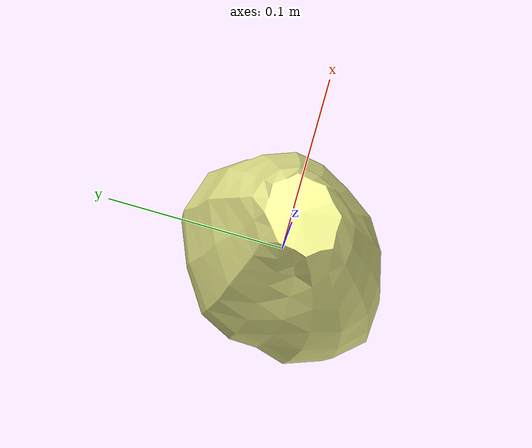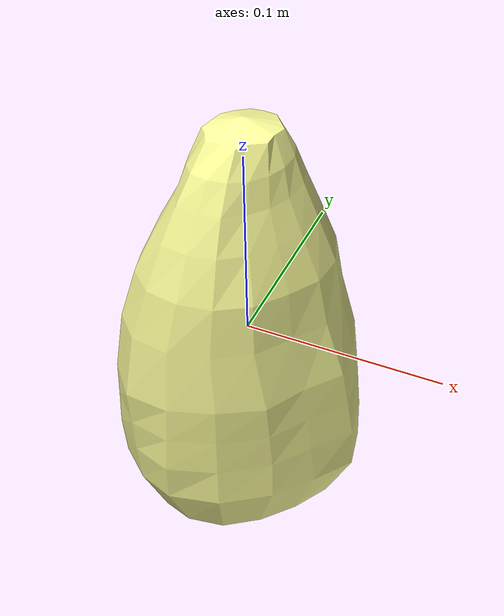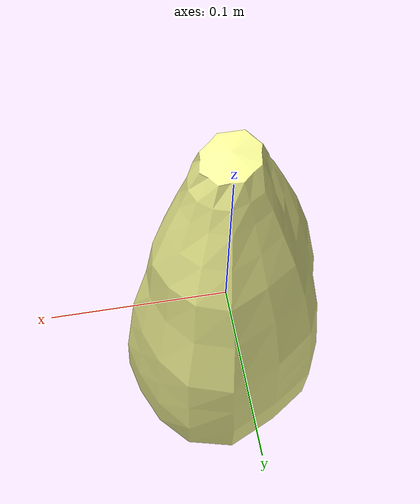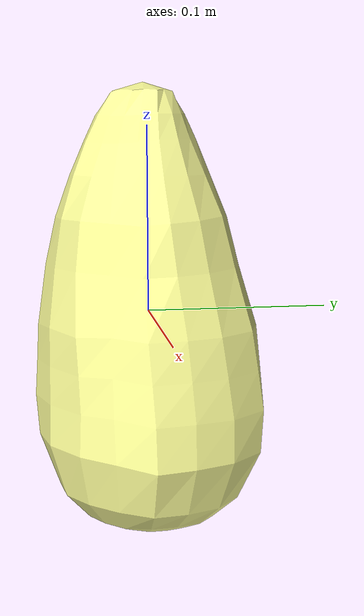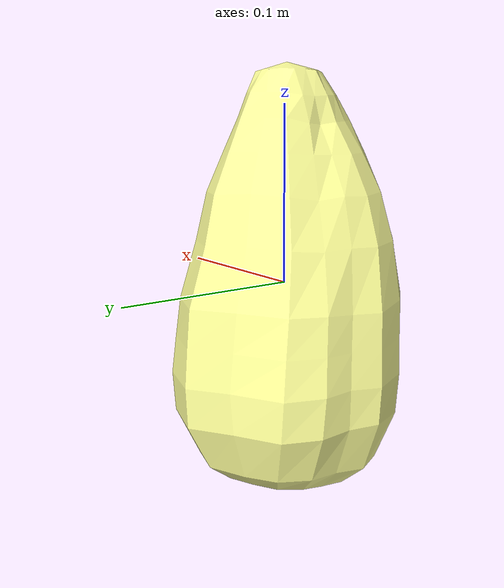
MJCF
<mujoco model="Lettuce_7">
  <default>
    <default class="visual">
      <geom group="2" type="mesh" contype="0" conaffinity="0"/>
    </default>
    <default class="collision">
      <geom group="3" type="mesh"/>
    </default>
  </default>
  <asset>
    <material name="Lettuce1_Mat" specular="0.5" shininess="0.5" rgba="0.9945233 1 0.6029412 1.0"/>
    <mesh file="Lettuce_7.obj"/>
    <mesh file="Lettuce_7_collision_0.obj"/>
  </asset>
  <worldbody>
    <body name="Lettuce_7">
      <geom material="Lettuce1_Mat" mesh="Lettuce_7" class="visual"/>
      <geom mesh="Lettuce_7_collision_0" rgba="0.7012195103600726 0.8230933195091032 0.2853194367365446 1" class="collision"/>
    </body>
  </worldbody>
</mujoco>
